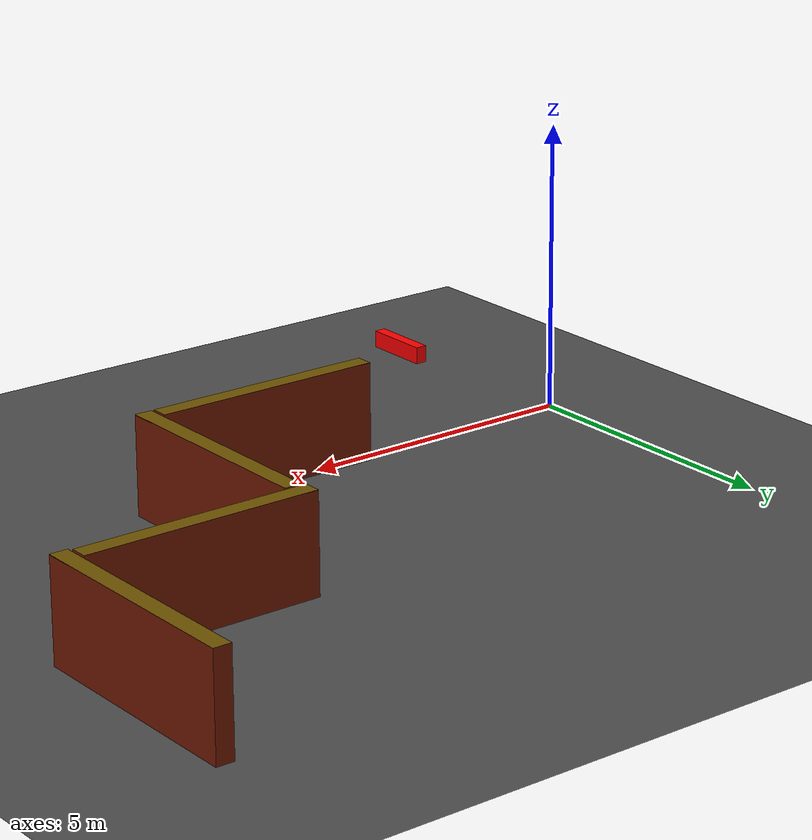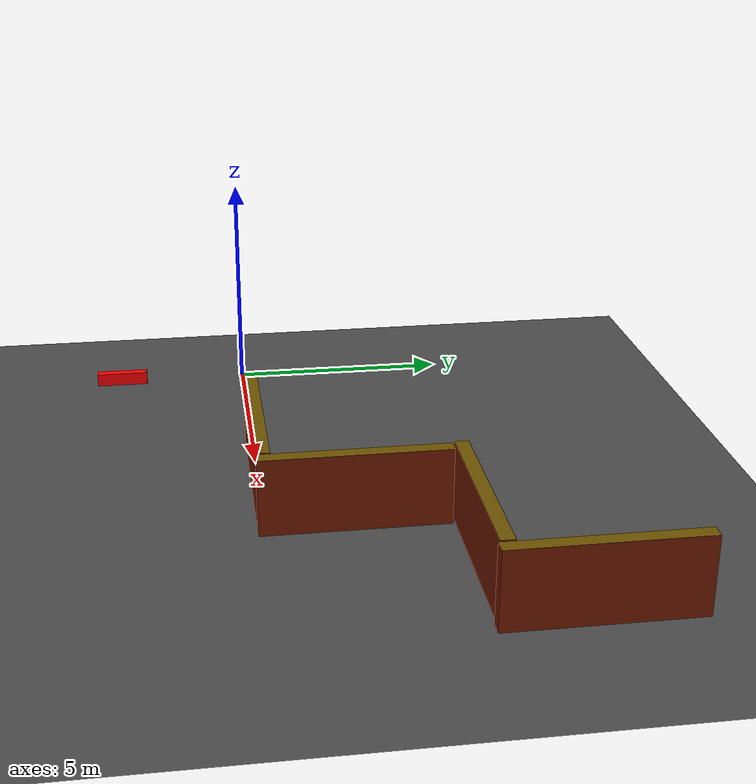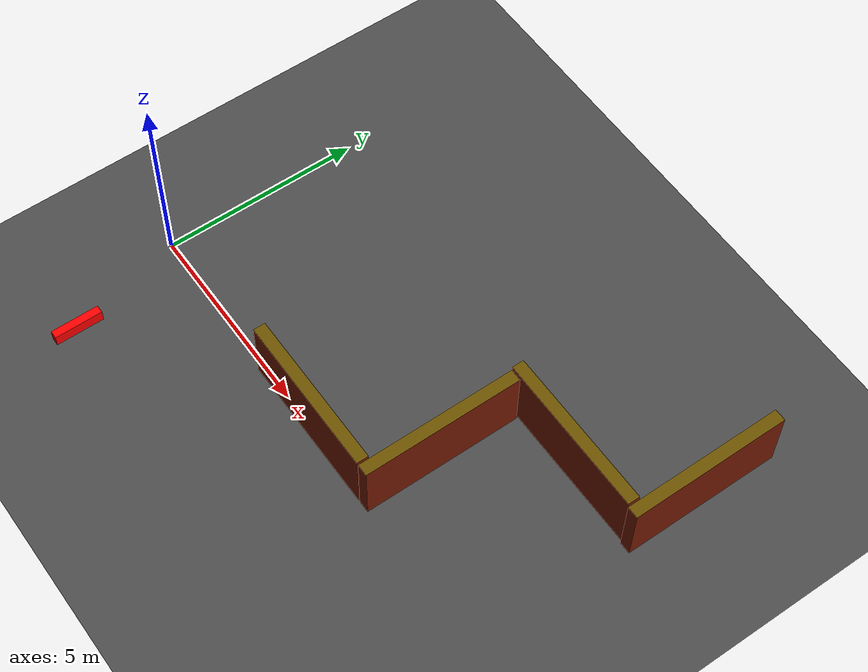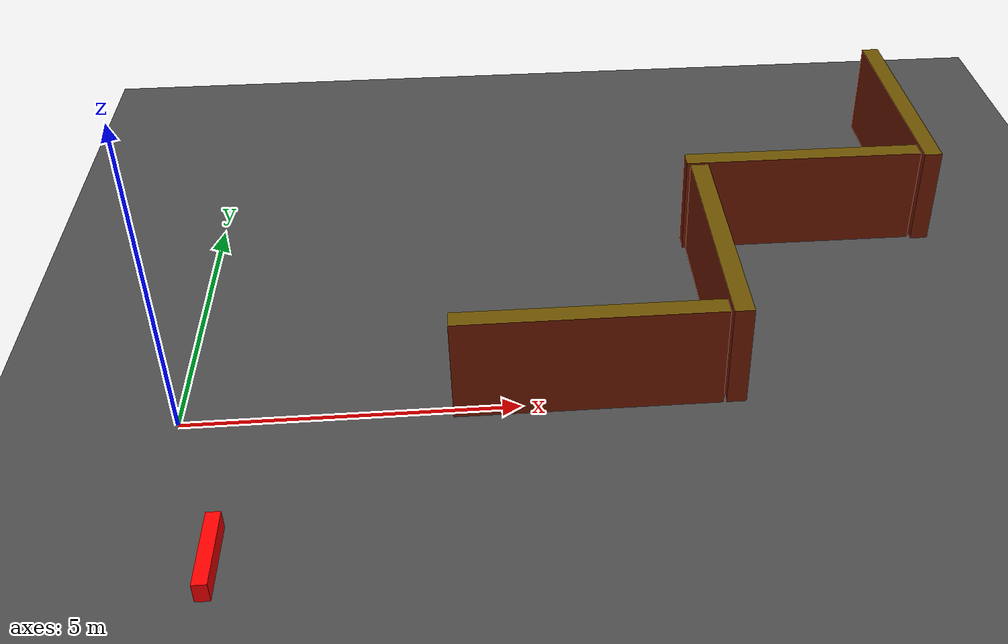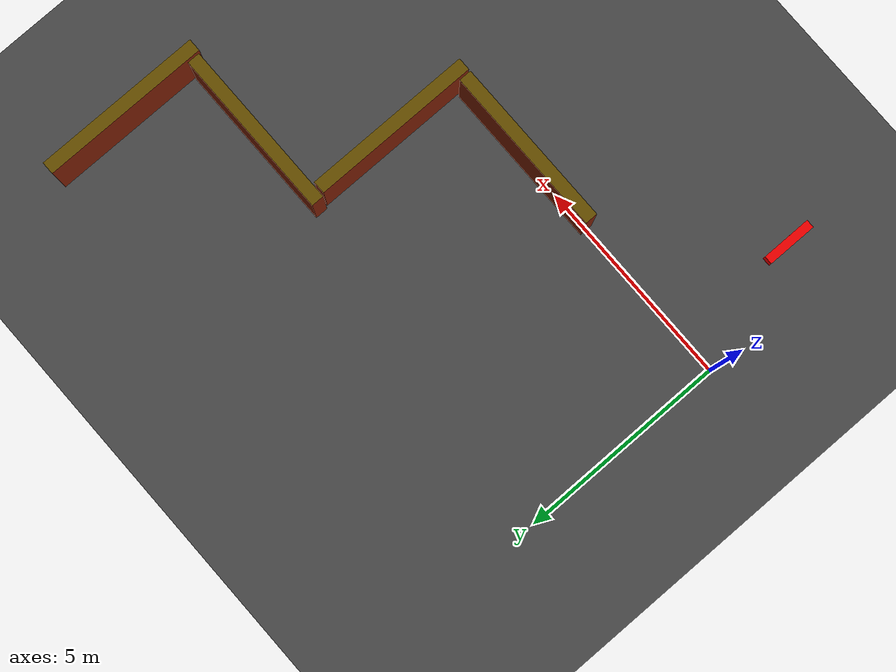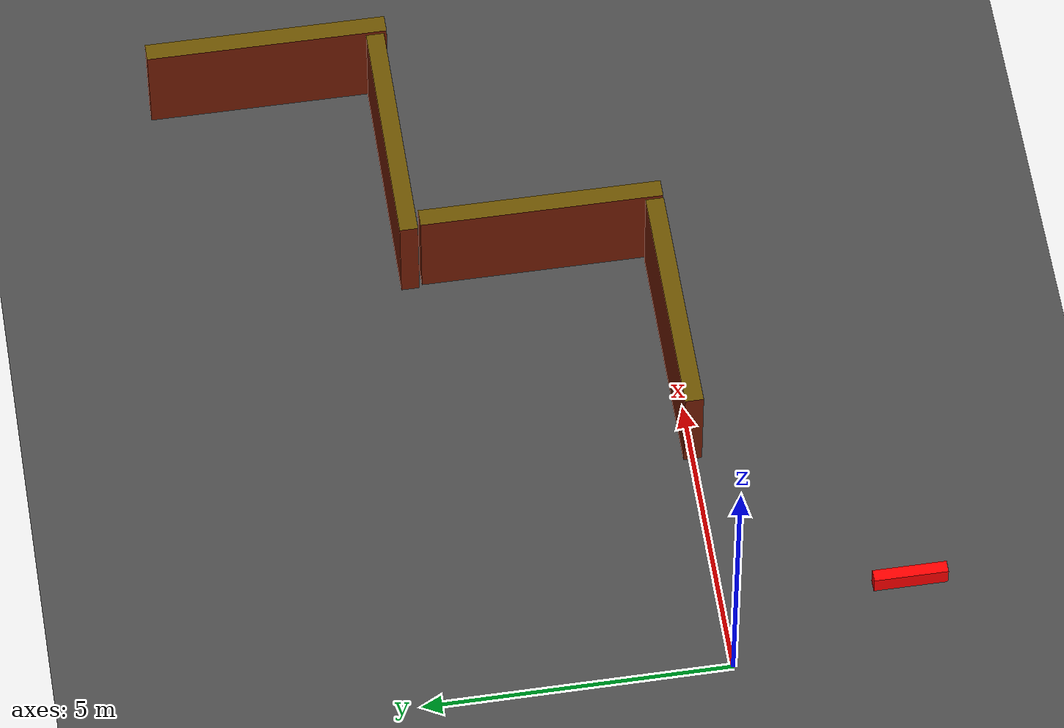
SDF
<?xml version="1.0" ?>
<sdf version='1.4'>
  <world name='default'>

    <physics type='ode'>
      <max_step_size>0.001</max_step_size>
      <real_time_factor>1</real_time_factor>
      <real_time_update_rate>1000</real_time_update_rate>
      <gravity>0 0 -9.8</gravity>
    </physics>

    <spherical_coordinates>
      <surface_model>EARTH_WGS84</surface_model>
      <latitude_deg>0</latitude_deg>
      <longitude_deg>0</longitude_deg>
      <elevation>0</elevation>
      <heading_deg>0</heading_deg>
    </spherical_coordinates>

    <!-- A global light source -->
   <scene>
      <sky>
        <clouds>
          <speed>12</speed>
        </clouds>
      </sky>
   </scene>

    <include>
      <uri>model://sun</uri>
    </include>

    <model name="ground_plane">
      <static>true</static>
      <link name="link">
        <collision name="collision">
          <geometry>
            <plane>
              <normal>0 0 1</normal>
              <size>100 100</size>
            </plane>
          </geometry>
          <surface>
            <friction>
              <ode>
                <mu>100</mu>
                <mu2>50</mu2>
              </ode>
            </friction>
          </surface>
        </collision>
        <visual name="visual">
          <cast_shadows>false</cast_shadows>
          <geometry>
            <plane>
              <normal>0 0 1</normal>
              <size>100 100</size>
            </plane>
          </geometry>
          <material>
            <script>
              <uri>model://asphalt_plane/materials/scripts</uri>
              <uri>model://asphalt_plane/materials/textures</uri>
              <name>vrc/asphalt</name>
            </script>
          </material>
        </visual>
      </link>
    </model>

    <model name='object'>
      <pose>0.95 -3.0 0.5 0 0 1.57</pose>
      <static>false</static>
      <link name='object_link'>
        <inertial>
          <mass>2.0</mass>
          <inertia> <!-- inertias are tricky to compute -->
            <!-- http://gazebosim.org/tutorials?tut=inertia&cat=build_robot -->
            <ixx>0.02158</ixx>       <!-- for a box: ixx = 0.083 * mass * (y*y + z*z) -->
            <ixy>0.0</ixy>         <!-- for a box: ixy = 0 -->
            <ixz>0.0</ixz>         <!-- for a box: ixz = 0 -->
            <iyy>0.67894</iyy>       <!-- for a box: iyy = 0.083 * mass * (x*x + z*z) -->
            <iyz>0.0</iyz>         <!-- for a box: iyz = 0 -->
            <izz>0.67064</izz>       <!-- for a box: izz = 0.083 * mass * (x*x + y*y) -->
          </inertia>
        </inertial>
        <collision name='collision'>
          <geometry>
            <box>
              <size>1.2 0.2 0.3</size>
            </box>
          </geometry>
          <max_contacts>10</max_contacts>
          <surface>
            <contact>
              <ode/>
            </contact>
            <bounce/>
          </surface>
        </collision>
        <visual name='visual'>
          <cast_shadows>0</cast_shadows>
          <geometry>
            <box>
              <size>1.2 0.2 0.3</size>
            </box>
          </geometry>
          <material>
            <ambient>1.0 0.0 0.0 1</ambient>
            <diffuse>1.0 0.0 0.0 1</diffuse>
            <specular>0.01 0.01 0.01 1</specular>
            <emissive>0 0 0 1</emissive>
          </material>
        </visual>
        <self_collide>0</self_collide>
        <kinematic>0</kinematic>
        <gravity>1</gravity>
      </link>
    </model>
    <gazebo reference='object'>
      <mu1>0.5</mu1>
      <mu2>0.5</mu2>
    </gazebo>

    <model name="construct_place_1" >
      <pose>6 0 0 0 0 0</pose>
      <include>
        <uri>model://uchannel_place</uri>
      </include>
    </model>

    <model name="construct_place_2" >
      <pose>8.2 1.85 0 0 0 1.57</pose>
      <include>
        <uri>model://uchannel_place</uri>
      </include>
    </model>

    <model name="construct_place_3" >
      <pose>10.0 4.05 0 0 0 0</pose>
      <include>
        <uri>model://uchannel_place</uri>
      </include>
    </model>

    <model name="construct_place_4" >
      <pose>12.2 5.85 0 0 0 1.57</pose>
      <include>
        <uri>model://uchannel_place</uri>
      </include>
    </model>

  </world>
</sdf>

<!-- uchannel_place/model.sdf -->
<sdf version="1.4">
  <model name='uchannel_place'>
    <static>1</static>
    <link name='link'>
      <pose>0 0 0 0 0 0</pose>
      <collision name='collision'>
        <geometry>
          <mesh>
            <uri>model://uchannel_place/mesh/uchannel_place_collision.dae</uri>
            <scale>1 1 1</scale>
          </mesh>
        </geometry>
      </collision>
      <visual name='visual'>
        <cast_shadows>1</cast_shadows>
        <transparency>0</transparency>
        <geometry>
          <mesh>
            <uri>model://uchannel_place/mesh/uchannel_place_visual.dae</uri>
            <scale>1 1 1</scale>
          </mesh>
        </geometry>
      </visual>
    </link>
  </model>
</sdf>
